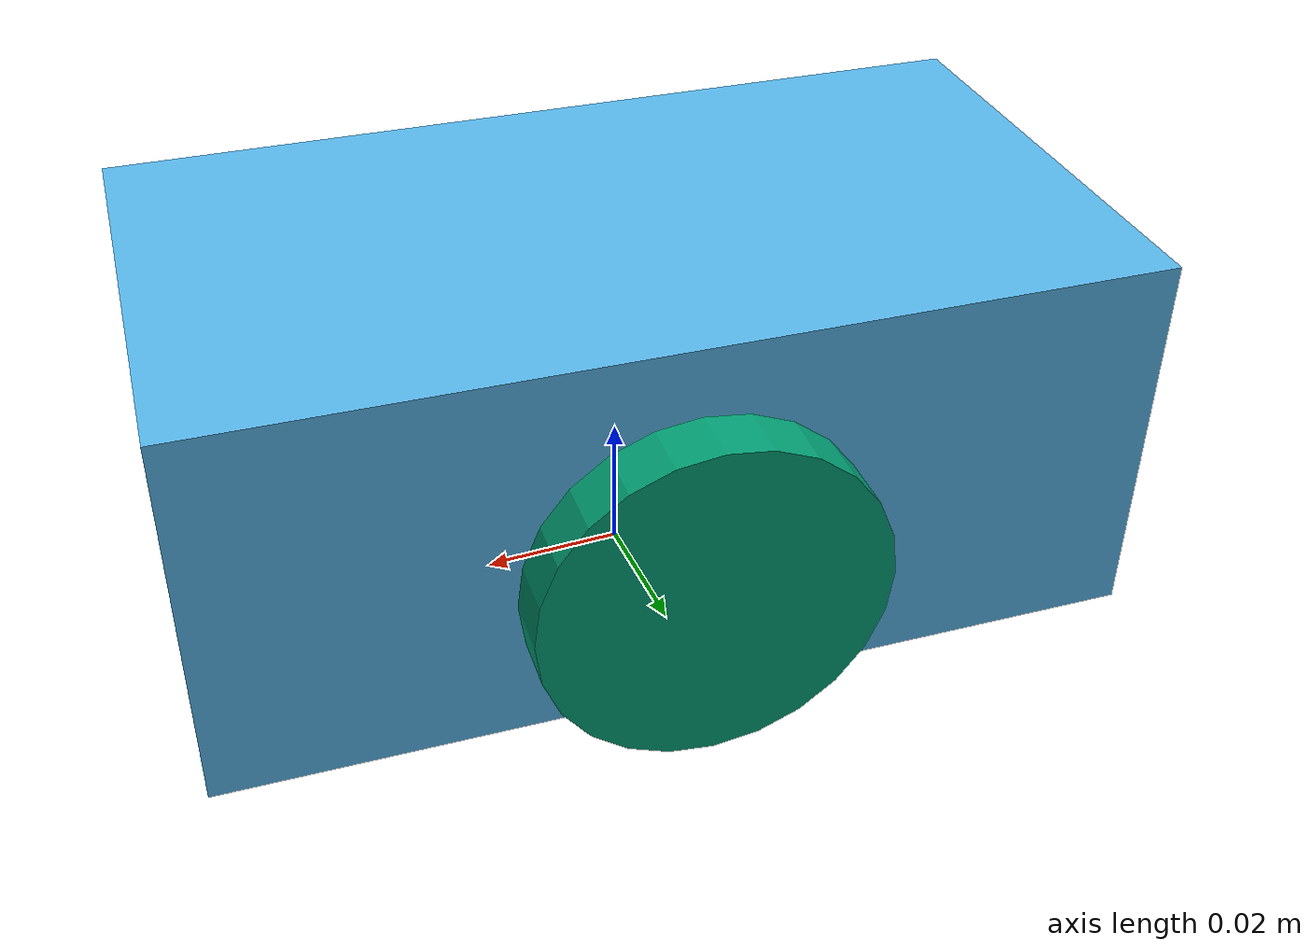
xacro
<?xml version="1.0" ?>
<robot name="SimpleMouse" xmlns:xacro="http://ros.org/wiki/xacro">
  <xacro:include filename="$(find raspi_description)/urdf/body.urdf.xacro" />
  <xacro:include filename="$(find raspi_description)/urdf/wheel.urdf.xacro" />
  <xacro:wheel rl="r" parent="body" />
  <xacro:wheel rl="l" parent="body" />
  <transmission name="trans1">
    <type>transmission_interface/SimpleTransmission</type>
    <joint name="wheel_r_joint">
      <hardwareInterface>VelocityJointInterface</hardwareInterface>
    </joint>
    <actuator name="wheel_r_motor">
      <hardwareInterface>VelocityJointInterface</hardwareInterface>
      <mechanismReduction>1</mechanismReduction>
    </actuator>
  </transmission>
  <transmission name="tran2">
    <type>transmission_interface/SimpleTransmission</type>
    <joint name="wheel_l_joint">
      <hardwareInterface>VelocityJointInterface</hardwareInterface>
    </joint>
    <actuator name="wheel_l_motor">
      <hardwareInterface>VelocityJointInterface</hardwareInterface>
      <mechanismReduction>1</mechanismReduction>
    </actuator>
  </transmission>
</robot>

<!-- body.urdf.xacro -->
<robot name="body" xmlns:xacro="http://ros.org/wiki/xacro">
  <link name="base_link" />
  <xacro:property name="b_m" value="1.52" />
  <xacro:property name="b_w" value="0.07" />
  <xacro:property name="b_h" value="0.13" />
  <xacro:property name="b_d" value="0.055" />
  <link name="body">
    <visual>
      <geometry>
        <box size="${b_w} ${b_h} ${b_d}" />
      </geometry>
    </visual>
    <collision>
      <geometry>
        <box size="${b_w} ${b_h} ${b_d}" />
      </geometry>
    </collision>
    <inertial>
      <origin xyz="0 0 0" rpy="0 0 0" />
      <mass value="${b_m}" />
      <inertia ixx="${b_m*(b_h*b_h+b_d*b_d)/12}" ixy="0" ixz="0"
               iyx="0" iyy="${b_m*(b_w*b_w+b_d*b_d)/12}" iyz="0"
               izx="0" izy="0" izz="${b_m*(b_w*b_w+b_h*b_h)/12}" />
    </inertial>
  </link>
  <joint name="body_joint" type="fixed">
    <parent link="base_link" />
    <child link="body" />
    <origin xyz="0 0 0.0275" rpy="0 0 1.5" />
  </joint>
</robot>

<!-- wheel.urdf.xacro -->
<robot name="wheel" xmlns:xacro="http://ros.org/wiki/xacro">
  <xacro:property name="PI" value="3.1415926533897931" />
  <xacro:property name="wheel_radius" value="0.024" />
  <xacro:property name="wheel_height" value="0.008" />
  <xacro:property name="wheel_mass" value="0.112" />
  <xacro:macro name="wheel" params="rl parent">
    <link name="wheel_${rl}">
      <visual>
        <geometry>
          <cylinder length="${wheel_height}" radius="${wheel_radius}" />
        </geometry>
      </visual>
      <collision>
        <geometry>
          <cylinder length="${wheel_height}" radius="${wheel_radius}" />
        </geometry>
      </collision>
      <inertial>
        <origin xyz="0 0 0" rpy="0 0 0" />
        <mass value="${wheel_mass}" />
        <inertia ixx="${wheel_mass*(3*wheel_radius*wheel_radius + wheel_height*wheel_height)/12}" ixy="0" ixz="0"
                 iyx="0" iyy="${wheel_mass*(3*wheel_radius*wheel_radius+wheel_height*wheel_height)/12}" iyz="0"
                 izx="0" izy="0" izz="${wheel_mass*(wheel_radius*wheel_radius)/2}" />
      </inertial>
    </link>
    <joint name="wheel_${rl}_joint" type="continuous">
      <parent link="${parent}" />
      <child link="wheel_${rl}" />
      <xacro:if value="${rl == 'r'}">
        <origin xyz="0.04 0 ${0.022 - 0.0275}" rpy="0 ${PI/2} 0" />
      </xacro:if>
      <xacro:if value ="${rl == 'l'}">
        <origin xyz="-0.04 0 ${0.022 - 0.0275}" rpy="0 ${PI/2} 0" />
      </xacro:if>
      <axis xyz="0 0 1" />
      <limit effort="10" velocity="10" />
      <joint_properties damping="0.0" friction="0.0" />
    </joint>
  </xacro:macro>
</robot>
